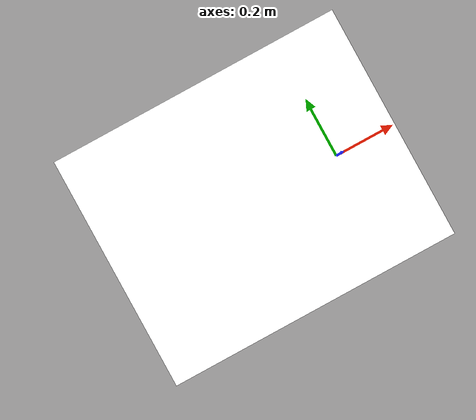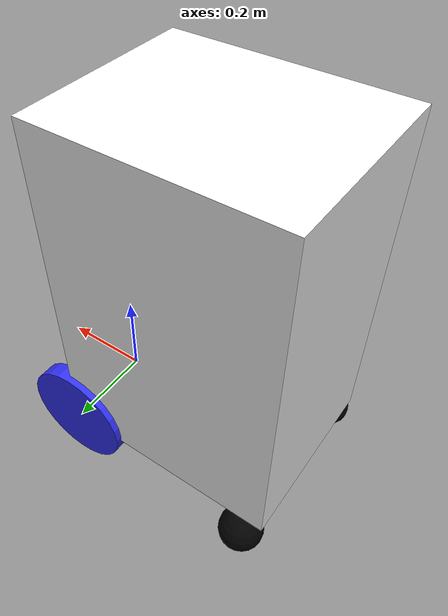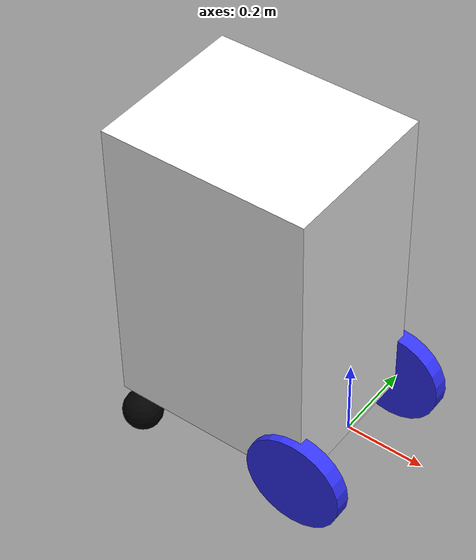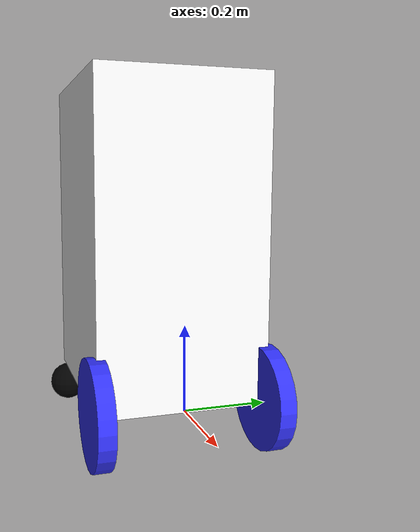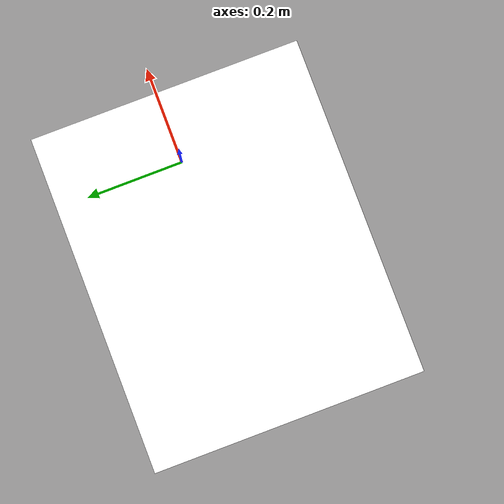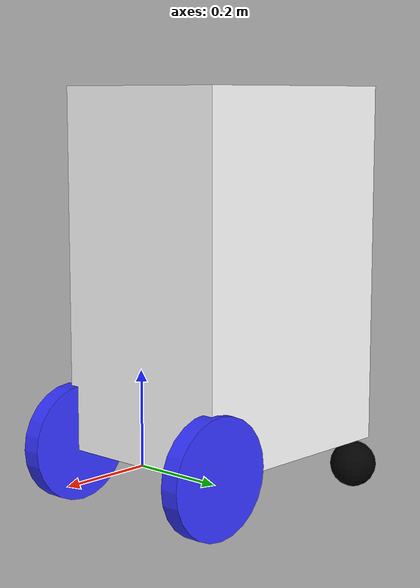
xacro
<?xml version="1.0"?>
<robot xmlns:xacro="http://www.ros.org/wiki/xacro" >

    <xacro:include filename="inertial_macros.xacro"/>

    <material name="white">
        <color rgba="1 1 1 1" />
    </material>

    <material name="orange">
        <color rgba="1 0.3 0.1 1"/>
    </material>

    <material name="blue">
        <color rgba="0.2 0.2 1 1"/>
    </material>

    <material name="black">
        <color rgba="0 0 0 1"/>
    </material>

    <!-- BASE LINK -->

    <link name="base_link">

    </link>

    <joint name="base_footprint_joint" type="fixed">
        <parent link="base_link"/>
        <child link="base_footprint"/>
        <origin xyz="0 0 0" rpy="0 0 0"/>
    </joint>

    <link name="base_footprint">
    </link>

    <!-- CHASSIS LINK -->

    <joint name="chassis_joint" type="fixed">
        <parent link="base_link"/>
        <child link="chassis"/>
        <origin xyz="-0.5 0 0"/>
    </joint>

    <link name="chassis">
        <visual>
            <origin xyz="0.255 0 0.385"/>
            <geometry>
                <box size="0.51 0.41 0.77"/>
            </geometry>
            <material name="white"/>
        </visual>
         <!-- same values as visual -->
        <collision>
            <origin xyz="0.255 0 0.385"/>
            <geometry>
                <box size="0.51 0.41 0.77"/>
            </geometry>
        </collision>
        <xacro:inertial_box mass="0.5" x="0.3" y="0.3" z="0.15">
            <origin xyz="0.15 0 0.075" rpy="0 0 0"/>
        </xacro:inertial_box>
    </link>

    <gazebo reference="chassis">
        <material>Gazebo/White</material>
    </gazebo>

    <!-- LEFT WHEEL LINK -->

    <joint name="left_wheel_joint" type="continuous">
        <parent link="base_link"/>
        <child link="left_wheel"/>
         <!-- change -->
        <origin xyz="0.0 0.2 .015" rpy="-${pi/2} 0 0" />
        <axis xyz="0 0 1"/>
    </joint>

    <link name="left_wheel">
        <visual>
            <geometry>
                <cylinder radius="0.125" length="0.04"/>
            </geometry>
            <material name="blue"/>
        </visual>
        <collision>
            <geometry>
                <sphere radius="0.125"/>
            </geometry>
        </collision>
        <xacro:inertial_cylinder mass="1" length="0.04" radius="0.05">
            <origin xyz="0 0 0" rpy="0 0 0"/>
        </xacro:inertial_cylinder>
    </link>

    <gazebo reference="left_wheel">
        <material>Gazebo/Blue</material>
    </gazebo>

    <!-- RIGHT WHEEL LINK -->

    <joint name="right_wheel_joint" type="continuous">
        <parent link="base_link"/>
        <child link="right_wheel"/>
        <origin xyz="0 -0.205 0.015" rpy="${pi/2} 0 0" />
        <axis xyz="0 0 -1"/>
    </joint>

    <link name="right_wheel">
        <visual>
            <geometry>
                <cylinder radius="0.125" length="0.04"/>
            </geometry>
            <material name="blue"/>
        </visual>
        <collision>
            <geometry>
                <sphere radius="0.125"/>
            </geometry>
        </collision>
        <xacro:inertial_cylinder mass="1" length="0.04" radius="0.05">
            <origin xyz="0 0 0" rpy="0 0 0"/>
        </xacro:inertial_cylinder>
    </link>

    <gazebo reference="right_wheel">
        <material>Gazebo/Blue</material>
    </gazebo>

    <!-- RIGHT CASTER WHEEL LINK -->

    <joint name="right_caster_wheel_joint" type="fixed">
        <parent link="chassis"/>
        <child link="right_caster_wheel"/>
        <origin xyz="0.05 -0.2 -0.05"/>
    </joint>

    <link name="right_caster_wheel">
        <visual>
            <geometry>
                <sphere radius="0.05"/>
            </geometry>
            <material name="black"/>
        </visual>
        <collision>
            <geometry>
                <sphere radius="0.05"/>
            </geometry>
        </collision>
        <xacro:inertial_sphere mass="0.1" radius="0.05">
            <origin xyz="0 0 0" rpy="0 0 0"/>
        </xacro:inertial_sphere>
    </link>

    <gazebo reference="right_caster_wheel">
        <material>Gazebo/Black</material>
        <mu1 value="0.01"/>
        <mu2 value="0.01"/>
    </gazebo>

        <!-- LEFT CASTER WHEEL LINK -->

    <joint name="left_caster_wheel_joint" type="fixed">
        <parent link="chassis"/>
        <child link="left_caster_wheel"/>
        <origin xyz="0.05 0.2 -0.05"/>
    </joint>

    <link name="left_caster_wheel">
        <visual>
            <geometry>
                <sphere radius="0.05"/>
            </geometry>
            <material name="black"/>
        </visual>
        <collision>
            <geometry>
                <sphere radius="0.05"/>
            </geometry>
        </collision>
        <xacro:inertial_sphere mass="0.1" radius="0.05">
            <origin xyz="0 0 0" rpy="0 0 0"/>
        </xacro:inertial_sphere>
    </link>

    <gazebo reference="left_caster_wheel">
        <material>Gazebo/Black</material>
        <mu1 value="0.01"/>
        <mu2 value="0.01"/>
    </gazebo>

</robot>
